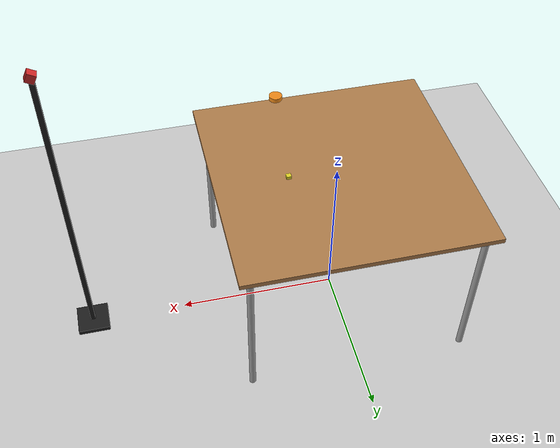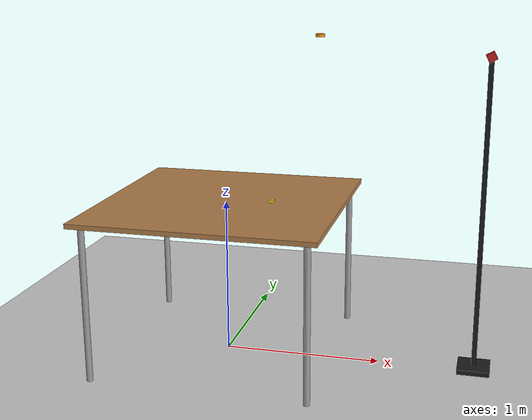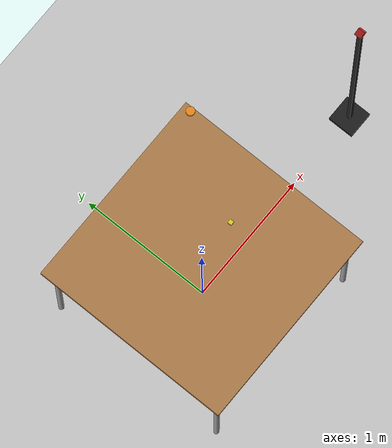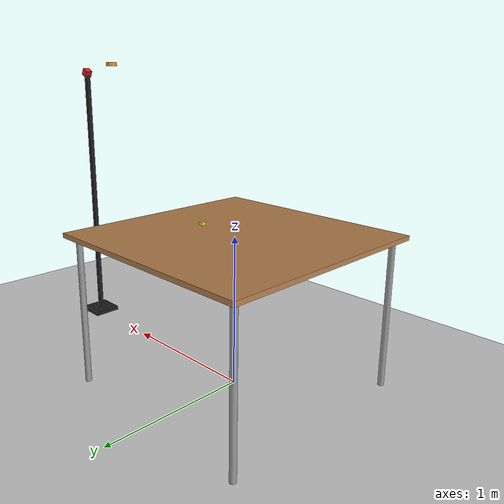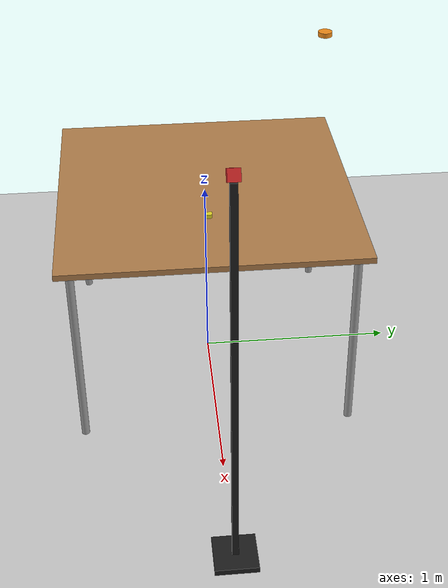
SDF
<sdf version="1.7">
 <world name="burger_assemble">
  <gravity>0 0 -9.8</gravity>
  <light name="sun" type="directional">
   <pose>0 0 10 0 -0 0</pose>
   <diffuse>0.8 0.8 0.8 1</diffuse>
   <specular>0.2 0.2 0.2 1</specular>
   <attenuation>
    <range>1000</range>
    <constant>0.9</constant>
    <linear>0.01</linear>
    <quadratic>0.001</quadratic>
   </attenuation>
   <direction>-0.5 0.1 -0.9</direction>
   <spot><inner_angle>0</inner_angle><outer_angle>0</outer_angle><falloff>0</falloff></spot>
  </light>
  <physics name="default_physics" type="ode">
   <max_step_size>0.001</max_step_size>
   <real_time_update_rate>1000</real_time_update_rate>
   <gravity>0 0 -9.8</gravity>
   <ode>
    <solver><type>quick</type><iters>200</iters><sor>1.3</sor></solver>
    <constraints><cfm>0</cfm><erp>0.2</erp></constraints>
   </ode>
  </physics>
  <model name="ground_plane">
   <static>1</static>
   <link name="link">
    <collision name="collision">
     <geometry><plane><normal>0 0 1</normal><size>20 20</size></plane></geometry>
     <surface><friction><ode><mu>100</mu><mu2>50</mu2></ode></friction></surface>
    </collision>
    <visual name="visual">
     <cast_shadows>0</cast_shadows>
     <geometry><plane><normal>0 0 1</normal><size>20 20</size></plane></geometry>
     <material>
      <script><uri>file://media/materials/scripts/gazebo.material</uri><name>Gazebo/Grey</name></script>
     </material>
    </visual>
   </link>
  </model>
  <model name="table">
   <static>1</static>
   <link name="table_base">
    <collision name="surface_collision">
     <pose>0 0 1 0 -0 0</pose>
     <geometry><box><size>1.5 1.5 0.03</size></box></geometry>
     <surface><friction><ode><mu>0.6</mu><mu2>0.6</mu2></ode></friction></surface>
    </collision>
    <visual name="surface_visual">
     <pose>0 0 1 0 -0 0</pose>
     <geometry><box><size>1.5 1.5 0.03</size></box></geometry>
     <material>
      <script><uri>file://media/materials/scripts/gazebo.material</uri><name>Gazebo/Wood</name></script>
     </material>
    </visual>
    <collision name="front_left_leg_collision">
     <pose>0.68 0.68 0.5 0 -0 0</pose>
     <geometry><cylinder><radius>0.02</radius><length>1</length></cylinder></geometry>
    </collision>
    <visual name="front_left_leg_visual">
     <pose>0.68 0.68 0.5 0 -0 0</pose>
     <geometry><cylinder><radius>0.02</radius><length>1</length></cylinder></geometry>
     <material>
      <script><uri>file://media/materials/scripts/gazebo.material</uri><name>Gazebo/Grey</name></script>
     </material>
    </visual>
    <collision name="front_right_leg_collision">
     <pose>0.68 -0.68 0.5 0 -0 0</pose>
     <geometry><cylinder><radius>0.02</radius><length>1</length></cylinder></geometry>
    </collision>
    <visual name="front_right_leg_visual">
     <pose>0.68 -0.68 0.5 0 -0 0</pose>
     <geometry><cylinder><radius>0.02</radius><length>1</length></cylinder></geometry>
     <material>
      <script><uri>file://media/materials/scripts/gazebo.material</uri><name>Gazebo/Grey</name></script>
     </material>
    </visual>
    <collision name="back_left_leg_collision">
     <pose>-0.68 0.68 0.5 0 -0 0</pose>
     <geometry><cylinder><radius>0.02</radius><length>1</length></cylinder></geometry>
    </collision>
    <visual name="back_left_leg_visual">
     <pose>-0.68 0.68 0.5 0 -0 0</pose>
     <geometry><cylinder><radius>0.02</radius><length>1</length></cylinder></geometry>
     <material>
      <script><uri>file://media/materials/scripts/gazebo.material</uri><name>Gazebo/Grey</name></script>
     </material>
    </visual>
    <collision name="back_right_leg_collision">
     <pose>-0.68 -0.68 0.5 0 -0 0</pose>
     <geometry><cylinder><radius>0.02</radius><length>1</length></cylinder></geometry>
    </collision>
    <visual name="back_right_leg_visual">
     <pose>-0.68 -0.68 0.5 0 -0 0</pose>
     <geometry><cylinder><radius>0.02</radius><length>1</length></cylinder></geometry>
     <material>
      <script><uri>file://media/materials/scripts/gazebo.material</uri><name>Gazebo/Grey</name></script>
     </material>
    </visual>
   </link>
  </model>
  <model name="grub_object_1">
   <pose>0.5 0.5 2.015 0 0 0</pose>
   <link name="grub_object_1_link">
    <inertial>
     <mass>0.0314</mass>
     <inertia><ixx>6.53e-6</ixx><iyy>6.53e-6</iyy><izz>3.92e-5</izz><ixy>0</ixy><ixz>0</ixz><iyz>0</iyz></inertia>
    </inertial>
    <collision name="grub_object_1_collision">
     <geometry><cylinder><radius>0.03</radius><length>0.02</length></cylinder></geometry>
     <surface>
      <friction><ode><mu>2.0</mu><mu2>2.0</mu2></ode></friction>
      <contact><ode><kp>100000</kp><kd>10.0</kd></ode></contact>
     </surface>
    </collision>
    <visual name="grub_object_1_visual">
     <geometry><cylinder><radius>0.03</radius><length>0.02</length></cylinder></geometry>
     <material>
      <script><uri>file://media/materials/scripts/gazebo.material</uri><name>Gazebo/Orange</name></script>
     </material>
    </visual>
   </link>
  </model>
  <model name="grub_object_2">
   <pose>0.3 0.0 1.025 0 0 0</pose>
   <link name="grub_object_2_link">
    <inertial>
     <mass>0.0314</mass>
     <inertia><ixx>8.39e-6</ixx><iyy>6.26e-6</iyy><izz>6.26e-6</izz><ixy>0</ixy><ixz>0</ixz><iyz>0</iyz></inertia>
    </inertial>
    <collision name="grub_object_2_collision">
     <geometry><box><size>0.03 0.03 0.02</size></box></geometry>
     <surface>
      <friction><ode><mu>2.0</mu><mu2>2.0</mu2></ode></friction>
      <contact><ode><kp>100000</kp><kd>10.0</kd><restitution>0.0</restitution></ode></contact>
     </surface>
    </collision>
    <visual name="grub_object_2_visual">
     <geometry><box><size>0.03 0.03 0.02</size></box></geometry>
     <material>
      <script><uri>file://media/materials/scripts/gazebo.material</uri><name>Gazebo/Yellow</name></script>
     </material>
    </visual>
   </link>
  </model>
  <model name="camera1">
   <pose>1.6 0 0.015 0 0 3.1415</pose>
   <static>true</static>
   <link name="camera_base">
    <pose>0 0 0.015 0 0 0</pose>
    <visual name="camera_base_visual">
     <geometry><box><size>0.2 0.2 0.03</size></box></geometry>
     <material>
      <script><uri>file://media/materials/scripts/gazebo.material</uri><name>Gazebo/Black</name></script>
     </material>
    </visual>
    <collision name="camera_base_collision"><geometry><box><size>0.2 0.2 0.03</size></box></geometry></collision>
   </link>
   <link name="camera_bracket">
    <pose>0 0 0.965 0 0 0</pose>
    <visual name="camera_bracket_visual">
     <geometry><box><size>0.03 0.03 1.9</size></box></geometry>
     <material>
      <script><uri>file://media/materials/scripts/gazebo.material</uri><name>Gazebo/Black</name></script>
     </material>
    </visual>
    <collision name="camera_bracket_collision">
     <geometry><box><size>0.03 0.03 1.9</size></box></geometry>
    </collision>
   </link>
   <link name="camera">
    <pose>0 0 1.94 0 0.48 0</pose>
    <visual name="camera_visual">
     <geometry><box><size>0.05 0.05 0.05</size></box></geometry>
     <material>
      <script><uri>file://media/materials/scripts/gazebo.material</uri><name>Gazebo/Red</name></script>
     </material>
    </visual>
    <collision name="camera_collision"><geometry><box><size>0.05 0.05 0.05</size></box></geometry></collision>
    <sensor name="rgb_camera" type="camera">
     <always_on>1</always_on>
     <update_rate>30</update_rate>
     <visualize>true</visualize>
     <camera>
      <horizontal_fov>1.25</horizontal_fov>
      <image><width>1920</width><height>1080</height><format>R8G8B8</format></image>
      <clip><near>0.1</near><far>100</far></clip>
     </camera>
     <plugin name="gazebo_ros_camera" filename="libgazebo_ros_camera.so">
      <camera_name>rgb_camera</camera_name>
      <image_topic_name>/camera/image_raw</image_topic_name>
      <camera_info_topic_name>/camera/camera_info</camera_info_topic_name>
      <frame_name>camera_optical_frame</frame_name>
     </plugin>
    </sensor>
   </link>
   <joint name="camera_base_to_bracket" type="fixed">
    <parent>camera_base</parent>
    <child>camera_bracket</child>
   </joint>
   <joint name="camera_bracket_to_camera" type="fixed">
    <parent>camera_bracket</parent>
    <child>camera</child>
   </joint>
  </model>
  <plugin name="gazebo_ros_state" filename="libgazebo_ros_state.so">
   <ros><namespace>/gazebo</namespace></ros>
  </plugin>
 </world>
</sdf>
